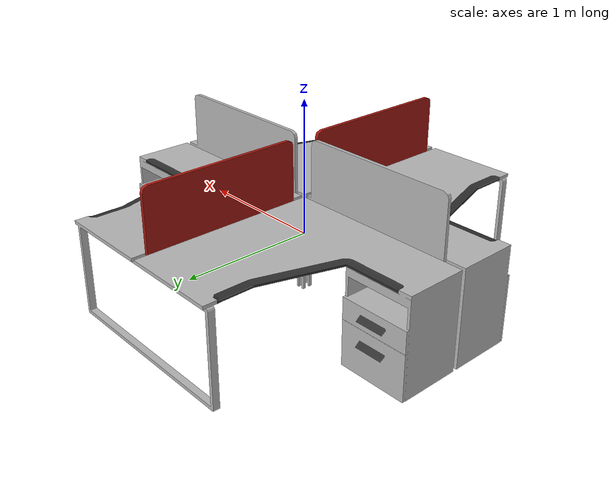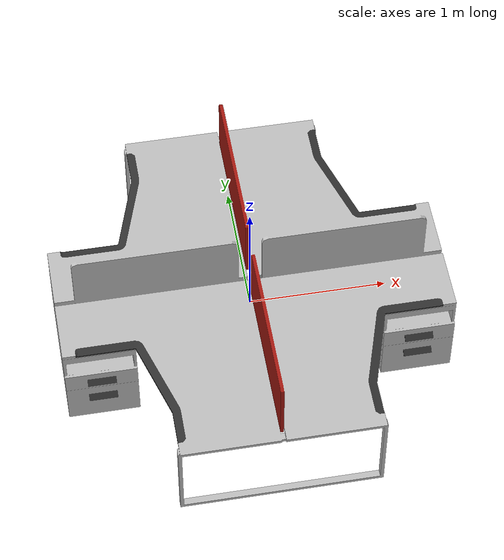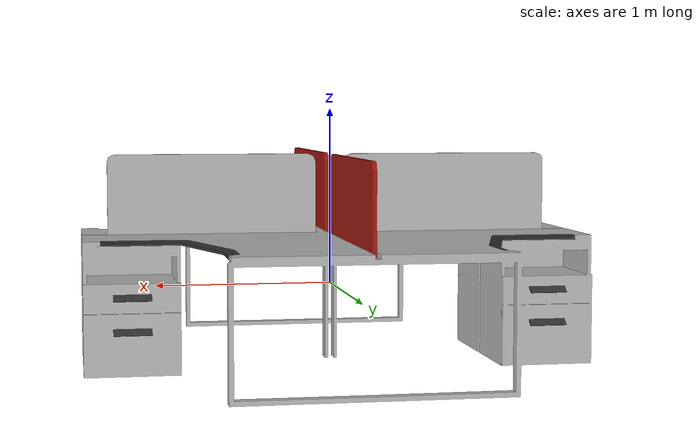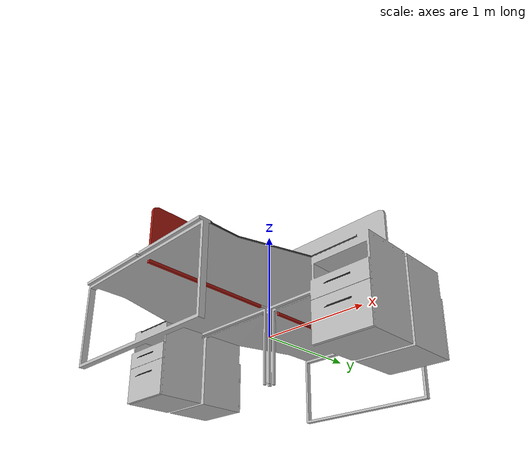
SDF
<?xml version='1.0'?>
<sdf version='1.5'>
    <model name="414_quartet_table">
        <pose>0 0 0 0 0 0</pose>
        <static>false</static>
        <link name='model_body'>
            <visual name="visual">
                <geometry>
                    <mesh>
                        <uri>model://rs_gazebo/meshes/ss_hq4/414_quartet_table/414_quartet_table_visual.dae</uri>
                        <scale>1 1 1</scale>
                    </mesh>
                </geometry>
            </visual>

            <collision name="collision">
                <geometry>
                    <mesh>
                        <uri>model://rs_gazebo/meshes/ss_hq4/414_quartet_table/414_quartet_table_collision.stl</uri>
                        <scale>1 1 1</scale>
                    </mesh>
                </geometry>
            </collision>

            <inertial>
                <pose> 0 0 0 0 0 0</pose>
                <inertia>
                    <ixx>24.0266666667</ixx>
                    <ixy>0</ixy>
                    <ixz>0</ixz>
                    <iyy>24.0266666667</iyy>
                    <iyz>0</iyz>
                    <izz>44.4266666667</izz>
                </inertia>
                <mass>34.0</mass>
            </inertial>
        </link>
    </model>
</sdf>
